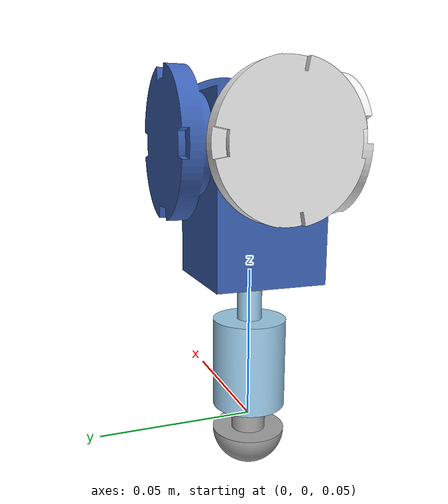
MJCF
<?xml version="1.0" ?>
<!-- Generated using onshape-to-robot -->
<!-- Onshape https://cad.onshape.com/documents/e7f4e3f1d5df0bd60aa67d40/w/d61673394b14cd7c8b93749f/e/def463a4e1c545cd828b6087 -->
<mujoco model="jamebot">
  <compiler angle="radian" meshdir="assets" autolimits="true"/>
  <default>
    <default class="jamebot">
      <joint frictionloss="0.1" armature="0.005"/>
      <default class="visual">
        <geom type="mesh" contype="0" conaffinity="0" group="2"/>
      </default>
      <default class="collision">
        <geom group="3"/>
      </default>
    </default>
  </default>
  <worldbody>
    <!-- Link body -->
    <body name="body" pos="0 0 0" quat="1 0 0 0" childclass="jamebot">
      <freejoint name="body_freejoint"/>
      <inertial pos="0.00233397 0.00233397 0.130402" mass="0.269808" fullinertia="0.000113405 0.000113405 9.14441e-05 1.46976e-06 -5.64092e-06 -5.64092e-06"/>
      <!-- Part body -->
      <geom type="mesh" class="visual" pos="0 0 0.00131911" quat="1 0 0 0" mesh="body" material="body_material"/>
      <geom type="mesh" class="collision" pos="0 0 0.00131911" quat="1 0 0 0" mesh="body" material="body_material"/>
      <!-- Link flywheel_1 -->
      <body name="flywheel_1" pos="0 -0.0225 0.13936" quat="0.0657566 -0.0657566 -0.704043 -0.704043">
        <!-- Joint from body to flywheel_1 -->
        <joint axis="0 0 1" name="flywheelY" type="hinge" range="-625.3631949588034 631.2738664771139"/>
        <inertial pos="-0 0 -0.0029485" mass="0.0247451" fullinertia="3.08285e-06 3.08285e-06 6.01906e-06 0 0 0"/>
        <!-- Part flywheel_1 -->
        <geom type="mesh" class="visual" pos="-0 0.138041 0.0225" quat="0.707107 0.707107 -0 0" mesh="flywheel_1" material="flywheel_1_material"/>
        <geom type="mesh" class="collision" pos="-0 0.138041 0.0225" quat="0.707107 0.707107 -0 0" mesh="flywheel_1" material="flywheel_1_material"/>
      </body>
      <!-- Link flywheel_2 -->
      <body name="flywheel_2" pos="-0.0225 0 0.13936" quat="0.5 0.5 0.5 0.5">
        <!-- Joint from body to flywheel_2 -->
        <joint axis="0 0 1" name="flywheelX" type="hinge" range="-628.3185307179587 628.3185307179587"/>
        <inertial pos="0 0 -0.0029485" mass="0.0247451" fullinertia="3.08285e-06 3.08285e-06 6.01906e-06 0 0 0"/>
        <!-- Part flywheel_2 -->
        <geom type="mesh" class="visual" pos="0 -0.138041 0.0225" quat="0.5 -0.5 -0.5 -0.5" mesh="flywheel_2" material="flywheel_2_material"/>
        <geom type="mesh" class="collision" pos="0 -0.138041 0.0225" quat="0.5 -0.5 -0.5 -0.5" mesh="flywheel_2" material="flywheel_2_material"/>
      </body>
      <!-- Link ballscrew -->
      <body name="ballscrew" pos="0 0 0.123938" quat="1 0 0 0">
        <!-- Joint from body to ballscrew -->
        <joint axis="0 0 1" name="ballscrew" type="slide" range="-0.08050678543012649 0.019493214569873518"/>
        <inertial pos="0 0 -0.0405413" mass="0.0361023" fullinertia="2.41068e-05 2.41068e-05 2.42338e-06 0 0 0"/>
        <!-- Part ballscrew -->
        <geom type="mesh" class="visual" pos="0 0 -0.0934308" quat="1 0 0 0" mesh="ballscrew" material="ballscrew_material"/>
        <geom type="mesh" class="collision" pos="0 0 -0.0934308" quat="1 0 0 0" mesh="ballscrew" material="ballscrew_material"/>
        <!-- Link foot -->
        <body name="foot" pos="0 0 -0.0527929" quat="1 0 0 0">
          <!-- Joint from ballscrew to foot -->
          <joint axis="0 0 1" name="spring" type="slide" range="-0.0155623788846242 0.0044376211153758" damping="1" stiffness="100" springref="0"/>
          <inertial pos="0 -0 -0.0229776" mass="0.0167885" fullinertia="2.02489e-06 2.02489e-06 6.77059e-07 0 0 0"/>
          <!-- Part foot -->
          <geom type="mesh" class="visual" pos="0 0 -0.0376424" quat="1 0 0 0" mesh="foot" material="foot_material"/>
          <geom type="mesh" class="collision" pos="0 0 -0.0376424" quat="1 0 0 0" mesh="foot" material="foot_material"/>
        </body>
      </body>
    </body>
  </worldbody>
  <asset>
    <mesh file="body.stl"/>
    <mesh file="foot.stl"/>
    <mesh file="flywheel_2.stl"/>
    <mesh file="ballscrew.stl"/>
    <mesh file="flywheel_1.stl"/>
    <material name="body_material" rgba="0.231373 0.380392 0.705882 1"/>
    <material name="flywheel_1_material" rgba="0.917647 0.917647 0.917647 1"/>
    <material name="flywheel_2_material" rgba="0.917647 0.917647 0.917647 1"/>
    <material name="ballscrew_material" rgba="0.615686 0.811765 0.929412 1"/>
    <material name="foot_material" rgba="0.647059 0.647059 0.647059 1"/>
  </asset>
  <actuator>
    <motor class="jamebot" name="flywheelY" joint="flywheelY"/>
    <motor class="jamebot" name="flywheelX" joint="flywheelX"/>
    <motor class="jamebot" name="ballscrew" joint="ballscrew"/>
  </actuator>
  <equality/>
</mujoco>
